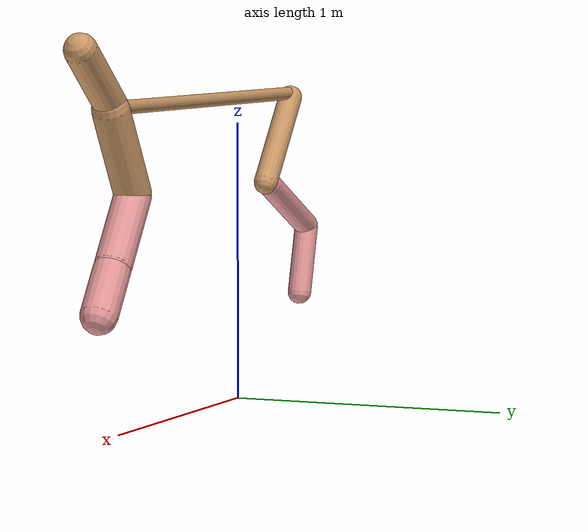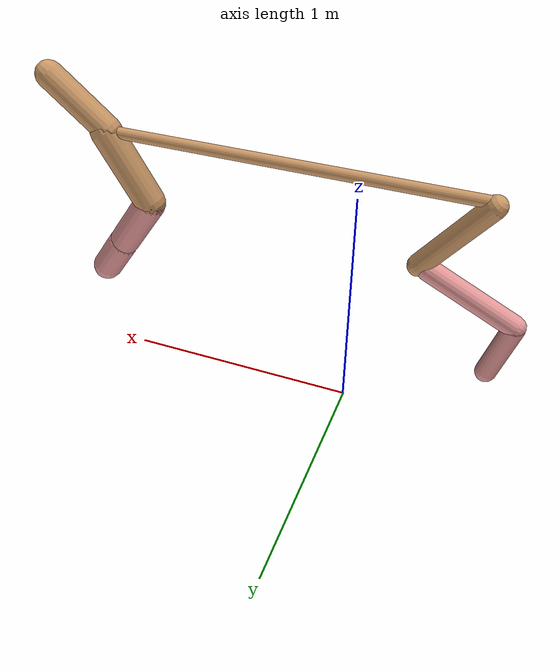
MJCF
<mujoco model="cheetah">
  <compiler angle="radian" coordinate="local" inertiafromgeom="true" settotalmass="14" />
  <default>
    <joint armature=".1" damping=".01" limited="true" solimplimit="0 .8 .03" solreflimit=".02 1" stiffness="8" />
    <geom conaffinity="0" condim="3" contype="1" friction="0.8 .1 .1" rgba="0.8 0.6 .4 1" solimp="0.0 0.8 0.01" solref="0.02 1" />
    <motor ctrllimited="true" ctrlrange="-1 1" />
  </default>
  <size nstack="300000" nuser_geom="1" />
  <option gravity="0 0 -9.81" timestep="0.01" />
  <worldbody>
    <body name="torso" pos="0.0 0.0 1.0908336644058876">
      <joint armature="0" axis="1 0 0" damping="0" limited="false" name="ignorex" pos="0 0 0" stiffness="0" type="slide" />
      <joint armature="0" axis="0 0 1" damping="0" limited="false" name="ignorez" pos="0 0 0" stiffness="0" type="slide" />
      <joint armature="0" axis="0 1 0" damping="0" limited="false" name="ignorey" pos="0 0 0" stiffness="0" type="hinge" />
      <geom fromto="-0.5 0.0 0.0 1.0466824660244196 0.0 0.0" name="torso" size="0.023845581474569173" type="capsule" />
      <geom axisangle="0 1 0 .87" name="head" pos="1.1466824660244197 0.0 0.1" size="0.056156429748159424 0.15" type="capsule" />

      <body name="bthigh" pos="-.5 0 0">
        <joint axis="0 1 0" damping="6" name="bthigh" pos="0 0 0" range="-.52 1.05" stiffness="240" type="hinge" />
        <geom axisangle="0 1 0 -3.8" name="bthigh" pos="0.12928207303316536 0.0 -0.168066694943115" size="0.043859205188420985 0.19302617062614721" type="capsule" />
        <body name="bshin" pos="0.21856414606633073 0.0 -0.32613338988623">
          <joint axis="0 1 0" damping="4.5" name="bshin" pos="0 0 0" range="-.785 .785" stiffness="180" type="hinge" />
          <geom axisangle="0 1 0 -2.03" name="bshin" pos="-0.18443715126306298 0.0 -0.09221857563153149" rgba="0.9 0.6 0.6 1" size="0.043859205188420985 0.1996822454753247" type="capsule" />
          <body name="bfoot" pos="-0.36887430252612596 0.0 -0.18443715126306298">
            <joint axis="0 1 0" damping="3" name="bfoot" pos="0 0 0" range="-.4 .785" stiffness="120" type="hinge" />
            <geom axisangle="0 1 0 -.27" name="bfoot" pos="0.039199215564303946 0.0 -0.12674413032458276" rgba="0.9 0.6 0.6 1" size="0.043859205188420985 0.12513420716453683" type="capsule" />
            <inertial mass="10" />
          </body>
        </body>
      </body>
      <body name="fthigh" pos="1.0466824660244196 0.0 0.0">
        <joint axis="0 1 0" damping="4.5" name="fthigh" pos="0 0 0" range="-1.5 0.8" stiffness="180" type="hinge" />
        <geom axisangle="0 1 0 .52" name="fthigh" pos="-0.08653752255821268 0.0 -0.1483500386712217" size="0.06436709683869588 0.1658209436948903" type="capsule" />
        <body name="fshin" pos="-0.17307504511642535 0.0 -0.2967000773424434">
          <joint axis="0 1 0" damping="3" name="fshin" pos="0 0 0" range="-1.2 1.1" stiffness="120" type="hinge" />
          <geom axisangle="0 1 0 -.6" name="fshin" pos="0.08031528845993442 0.0 -0.11120578402144765" rgba="0.9 0.6 0.6 1" size="0.06436709683869588 0.13215804535081482" type="capsule" />
          <body name="ffoot" pos="0.16063057691986884 0.0 -0.2224115680428953">
            <joint axis="0 1 0" damping="1.5" name="ffoot" pos="0 0 0" range="-3.1 -0.3" stiffness="60" type="hinge" />
            <geom axisangle="0 1 0 -.6" name="ffoot" pos="0.05434114445109728 0.0 -0.08453066914615134" rgba="0.9 0.6 0.6 1" size="0.06436709683869588 0.08727418089204753" type="capsule" />
            <inertial mass="10" />
          </body>
        </body>
      </body>
    </body>
  </worldbody>
  <actuator>
    <motor gear="120" joint="bthigh" name="bthigh" />
    <motor gear="90" joint="bshin" name="bshin" />
    <motor gear="60" joint="bfoot" name="bfoot" />
    <motor gear="120" joint="fthigh" name="fthigh" />
    <motor gear="60" joint="fshin" name="fshin" />
    <motor gear="30" joint="ffoot" name="ffoot" />
  </actuator>
</mujoco>
